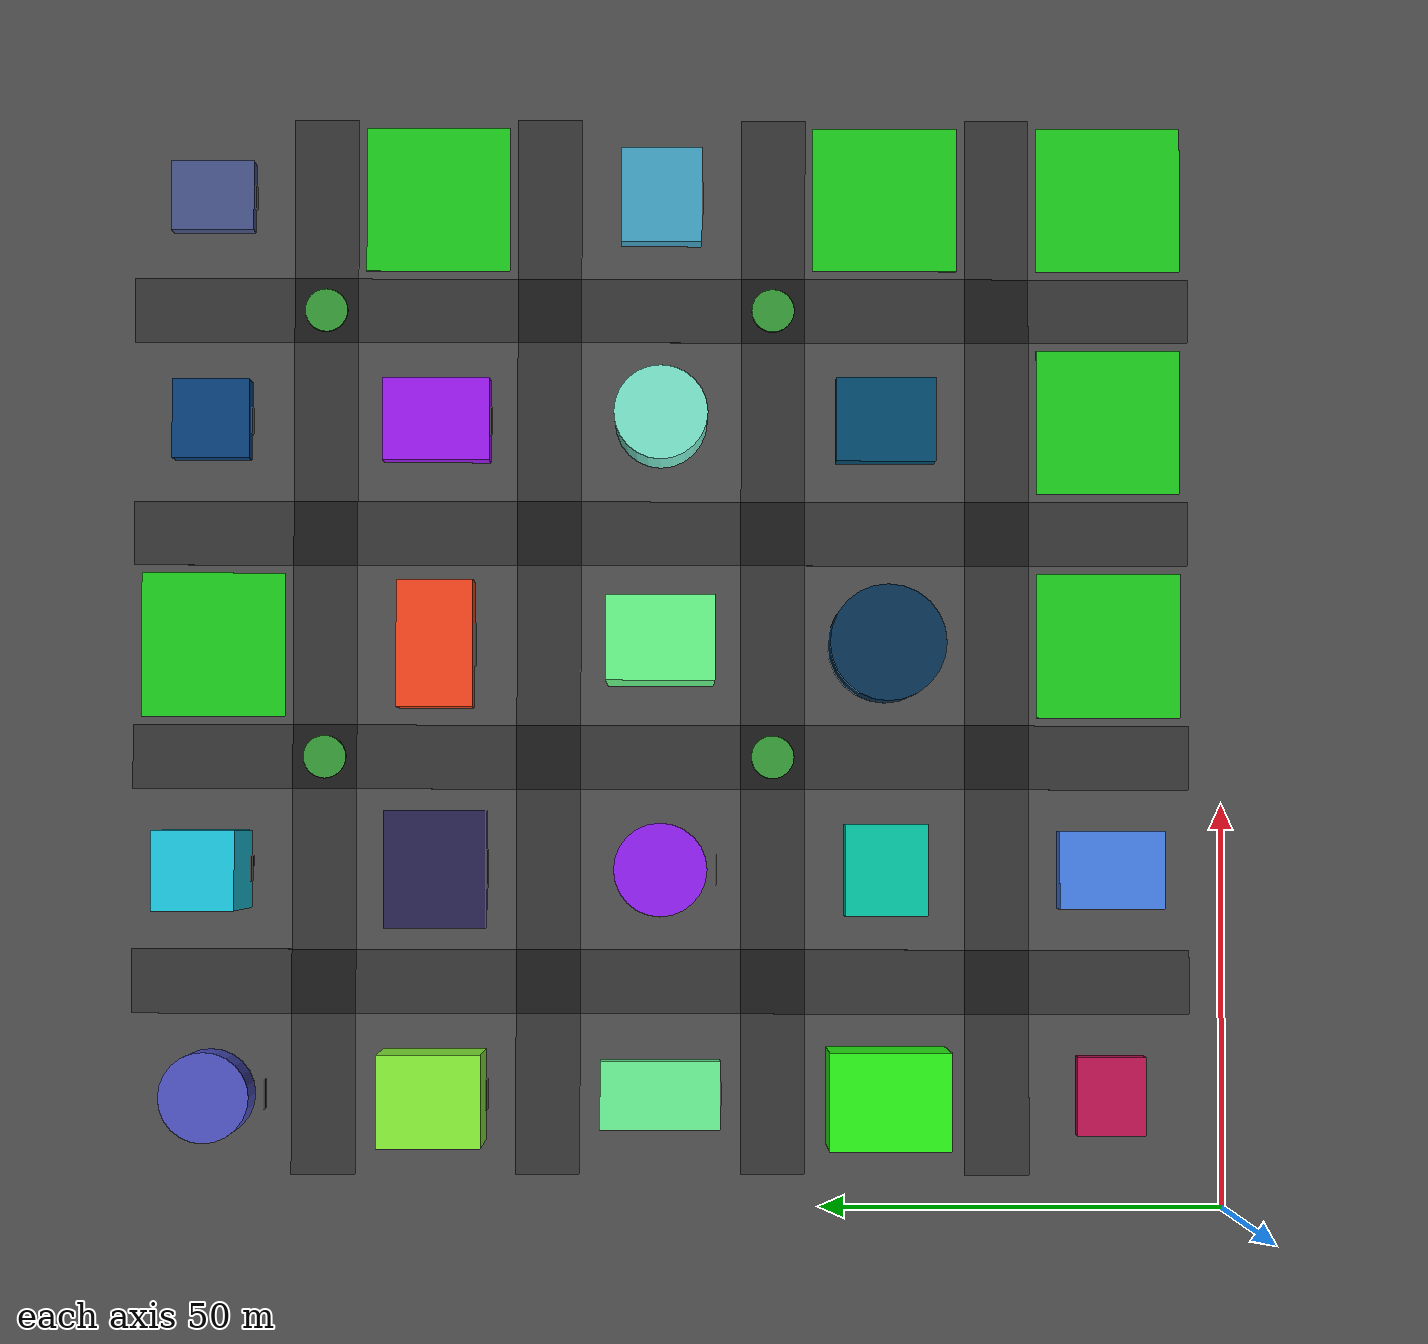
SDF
<sdf version="1.8">
 <world name="urban_city_rich">
  <model name="ground_plane">
   <static>true</static>
   <link name="link">
    <collision name="collision">
     <geometry><plane><normal>0 0 1</normal><size>200 200</size></plane></geometry>
     <surface><friction><ode><mu>100</mu><mu2>50</mu2></ode></friction></surface>
    </collision>
    <visual name="visual">
     <geometry><plane><normal>0 0 1</normal><size>200 200</size></plane></geometry>
     <material><ambient>0.3 0.3 0.3 1</ambient><diffuse>0.3 0.3 0.3 1</diffuse></material>
    </visual>
   </link>
  </model>
  <model name="bldg_30">
   <static>true</static>
   <pose>14.0 14.0 1.7848468009014558 0 0 0</pose>
   <link name="link">
    <collision name="col">
     <geometry><box><size>9.741607187313399 8.467866336058396 3.5696936018029115</size></box></geometry>
    </collision>
    <visual name="vis">
     <geometry><box><size>9.741607187313399 8.467866336058396 3.5696936018029115</size></box></geometry>
     <material>
      <ambient>0.7357371787890434 0.060957571476515815 0.31360480976972926 1</ambient>
      <diffuse>0.7357371787890434 0.060957571476515815 0.31360480976972926 1</diffuse>
     </material>
    </visual>
   </link>
  </model>
  <model name="road_h_0_1">
   <static>true</static>
   <pose>14.0 28.0 0.01 0 0 0</pose>
   <link name="link">
    <visual name="vis">
     <geometry><box><size>20.0 8.0 0.02</size></box></geometry>
     <material><ambient>0.2 0.2 0.2 1</ambient><diffuse>0.2 0.2 0.2 1</diffuse></material>
    </visual>
   </link>
  </model>
  <model name="bldg_31">
   <static>true</static>
   <pose>14.0 42.0 8.341775944589713 0 0 0</pose>
   <link name="link">
    <collision name="col">
     <geometry><box><size>12.022803063356108 14.821759136386284 16.683551889179427</size></box></geometry>
    </collision>
    <visual name="vis">
     <geometry><box><size>12.022803063356108 14.821759136386284 16.683551889179427</size></box></geometry>
     <material>
      <ambient>0.15743272793948326 0.9607789032744504 0.08011146524058688 1</ambient>
      <diffuse>0.15743272793948326 0.9607789032744504 0.08011146524058688 1</diffuse>
     </material>
    </visual>
   </link>
  </model>
  <model name="door_31">
   <static>true</static>
   <pose>14.0 34.48912043180686 1.0 0 0 0</pose>
   <link name="link">
    <visual name="vis">
     <geometry><box><size>4.0076010211187025 0.2 2.0</size></box></geometry>
     <material><ambient>0 0 0 1</ambient><diffuse>0 0 0 1</diffuse></material>
    </visual>
   </link>
  </model>
  <model name="road_h_0_2">
   <static>true</static>
   <pose>14.0 56.0 0.01 0 0 0</pose>
   <link name="link">
    <visual name="vis">
     <geometry><box><size>20.0 8.0 0.02</size></box></geometry>
     <material><ambient>0.2 0.2 0.2 1</ambient><diffuse>0.2 0.2 0.2 1</diffuse></material>
    </visual>
   </link>
  </model>
  <model name="bldg_32">
   <static>true</static>
   <pose>14.0 70.0 1.6027819990556886 0 0 0</pose>
   <link name="link">
    <collision name="col">
     <geometry><box><size>8.543686907006059 14.894553615761035 3.2055639981113773</size></box></geometry>
    </collision>
    <visual name="vis">
     <geometry><box><size>8.543686907006059 14.894553615761035 3.2055639981113773</size></box></geometry>
     <material>
      <ambient>0.40377555131827747 0.9415961272290894 0.5696754101381849 1</ambient>
      <diffuse>0.40377555131827747 0.9415961272290894 0.5696754101381849 1</diffuse>
     </material>
    </visual>
   </link>
  </model>
  <model name="door_32">
   <static>true</static>
   <pose>14.0 62.45272319211948 1.0 0 0 0</pose>
   <link name="link">
    <visual name="vis">
     <geometry><box><size>2.8478956356686864 0.2 2.0</size></box></geometry>
     <material><ambient>0 0 0 1</ambient><diffuse>0 0 0 1</diffuse></material>
    </visual>
   </link>
  </model>
  <model name="road_h_0_3">
   <static>true</static>
   <pose>14.0 84.0 0.01 0 0 0</pose>
   <link name="link">
    <visual name="vis">
     <geometry><box><size>20.0 8.0 0.02</size></box></geometry>
     <material><ambient>0.2 0.2 0.2 1</ambient><diffuse>0.2 0.2 0.2 1</diffuse></material>
    </visual>
   </link>
  </model>
  <model name="bldg_33">
   <static>true</static>
   <pose>14.0 98.0 8.69381510332103 0 0 0</pose>
   <link name="link">
    <collision name="col">
     <geometry><box><size>11.35379932268698 12.669378314329798 17.38763020664206</size></box></geometry>
    </collision>
    <visual name="vis">
     <geometry><box><size>11.35379932268698 12.669378314329798 17.38763020664206</size></box></geometry>
     <material>
      <ambient>0.5227827155319589 0.9347062577364272 0.20425919942353643 1</ambient>
      <diffuse>0.5227827155319589 0.9347062577364272 0.20425919942353643 1</diffuse>
     </material>
    </visual>
   </link>
  </model>
  <model name="door_33">
   <static>true</static>
   <pose>14.0 91.5653108428351 1.0 0 0 0</pose>
   <link name="link">
    <visual name="vis">
     <geometry><box><size>3.7845997742289934 0.2 2.0</size></box></geometry>
     <material><ambient>0 0 0 1</ambient><diffuse>0 0 0 1</diffuse></material>
    </visual>
   </link>
  </model>
  <model name="road_h_0_4">
   <static>true</static>
   <pose>14.0 112.0 0.01 0 0 0</pose>
   <link name="link">
    <visual name="vis">
     <geometry><box><size>20.0 8.0 0.02</size></box></geometry>
     <material><ambient>0.2 0.2 0.2 1</ambient><diffuse>0.2 0.2 0.2 1</diffuse></material>
    </visual>
   </link>
  </model>
  <model name="bldg_34">
   <static>true</static>
   <pose>14.0 126.0 4.88685952615846 0 0 0</pose>
   <link name="link">
    <collision name="col">
     <geometry><cylinder><radius>5.583143387165018</radius><length>9.77371905231692</length></cylinder></geometry>
    </collision>
    <visual name="vis">
     <geometry><cylinder><radius>5.583143387165018</radius><length>9.77371905231692</length></cylinder></geometry>
     <material>
      <ambient>0.2999970797987622 0.31617719627185403 0.7518644924144021 1</ambient>
      <diffuse>0.2999970797987622 0.31617719627185403 0.7518644924144021 1</diffuse>
     </material>
    </visual>
   </link>
  </model>
  <model name="door_34">
   <static>true</static>
   <pose>14.0 119.21323910816012 1.0 0 0 0</pose>
   <link name="link">
    <visual name="vis">
     <geometry><box><size>3.7220955914433453 0.2 2.0</size></box></geometry>
     <material><ambient>0 0 0 1</ambient><diffuse>0 0 0 1</diffuse></material>
    </visual>
   </link>
  </model>
  <model name="road_v_1_0">
   <static>true</static>
   <pose>28.0 14.0 0.01 0 0 0</pose>
   <link name="link">
    <visual name="vis">
     <geometry><box><size>8.0 20.0 0.02</size></box></geometry>
     <material><ambient>0.2 0.2 0.2 1</ambient><diffuse>0.2 0.2 0.2 1</diffuse></material>
    </visual>
   </link>
  </model>
  <model name="bldg_39">
   <static>true</static>
   <pose>42.0 14.0 2.576418280708197 0 0 0</pose>
   <link name="link">
    <collision name="col">
     <geometry><box><size>9.628778498619624 13.073903671080638 5.152836561416394</size></box></geometry>
    </collision>
    <visual name="vis">
     <geometry><box><size>9.628778498619624 13.073903671080638 5.152836561416394</size></box></geometry>
     <material>
      <ambient>0.2639839016304094 0.48853185214937656 0.9053364910793232 1</ambient>
      <diffuse>0.2639839016304094 0.48853185214937656 0.9053364910793232 1</diffuse>
     </material>
    </visual>
   </link>
  </model>
  <model name="road_inter_1_1">
   <static>true</static>
   <pose>28.0 28.0 0.01 0 0 0</pose>
   <link name="link">
    <visual name="vis">
     <geometry><box><size>8.0 8.0 0.02</size></box></geometry>
     <material><ambient>0.1 0.1 0.1 1</ambient><diffuse>0.1 0.1 0.1 1</diffuse></material>
    </visual>
   </link>
  </model>
  <model name="road_h_1_1">
   <static>true</static>
   <pose>42.0 28.0 0.01 0 0 0</pose>
   <link name="link">
    <visual name="vis">
     <geometry><box><size>20.0 8.0 0.02</size></box></geometry>
     <material><ambient>0.2 0.2 0.2 1</ambient><diffuse>0.2 0.2 0.2 1</diffuse></material>
    </visual>
   </link>
  </model>
  <model name="road_v_1_1">
   <static>true</static>
   <pose>28.0 42.0 0.01 0 0 0</pose>
   <link name="link">
    <visual name="vis">
     <geometry><box><size>8.0 20.0 0.02</size></box></geometry>
     <material><ambient>0.2 0.2 0.2 1</ambient><diffuse>0.2 0.2 0.2 1</diffuse></material>
    </visual>
   </link>
  </model>
  <model name="bldg_40">
   <static>true</static>
   <pose>42.0 42.0 3.4229846771273342 0 0 0</pose>
   <link name="link">
    <collision name="col">
     <geometry><box><size>11.38860618050981 10.213441791778013 6.8459693542546685</size></box></geometry>
    </collision>
    <visual name="vis">
     <geometry><box><size>11.38860618050981 10.213441791778013 6.8459693542546685</size></box></geometry>
     <material>
      <ambient>0.0035456890877823 0.7711192230196271 0.6371133773013796 1</ambient>
      <diffuse>0.0035456890877823 0.7711192230196271 0.6371133773013796 1</diffuse>
     </material>
    </visual>
   </link>
  </model>
  <model name="door_40">
   <static>true</static>
   <pose>42.0 36.793279104110994 1.0 0 0 0</pose>
   <link name="link">
    <visual name="vis">
     <geometry><box><size>3.796202060169937 0.2 2.0</size></box></geometry>
     <material><ambient>0 0 0 1</ambient><diffuse>0 0 0 1</diffuse></material>
    </visual>
   </link>
  </model>
  <model name="road_inter_1_2">
   <static>true</static>
   <pose>28.0 56.0 0.01 0 0 0</pose>
   <link name="link">
    <visual name="vis">
     <geometry><box><size>8.0 8.0 0.02</size></box></geometry>
     <material><ambient>0.1 0.1 0.1 1</ambient><diffuse>0.1 0.1 0.1 1</diffuse></material>
    </visual>
   </link>
  </model>
  <model name="road_h_1_2">
   <static>true</static>
   <pose>42.0 56.0 0.01 0 0 0</pose>
   <link name="link">
    <visual name="vis">
     <geometry><box><size>20.0 8.0 0.02</size></box></geometry>
     <material><ambient>0.2 0.2 0.2 1</ambient><diffuse>0.2 0.2 0.2 1</diffuse></material>
    </visual>
   </link>
  </model>
  <model name="road_v_1_2">
   <static>true</static>
   <pose>28.0 70.0 0.01 0 0 0</pose>
   <link name="link">
    <visual name="vis">
     <geometry><box><size>8.0 20.0 0.02</size></box></geometry>
     <material><ambient>0.2 0.2 0.2 1</ambient><diffuse>0.2 0.2 0.2 1</diffuse></material>
    </visual>
   </link>
  </model>
  <model name="bldg_41">
   <static>true</static>
   <pose>42.0 70.0 4.1158197627388615 0 0 0</pose>
   <link name="link">
    <collision name="col">
     <geometry><cylinder><radius>5.767342047443402</radius><length>8.231639525477723</length></cylinder></geometry>
    </collision>
    <visual name="vis">
     <geometry><cylinder><radius>5.767342047443402</radius><length>8.231639525477723</length></cylinder></geometry>
     <material>
      <ambient>0.5609068647747464 0.111873880589335 0.9450509390466391 1</ambient>
      <diffuse>0.5609068647747464 0.111873880589335 0.9450509390466391 1</diffuse>
     </material>
    </visual>
   </link>
  </model>
  <model name="door_41">
   <static>true</static>
   <pose>42.0 63.077330212960035 1.0 0 0 0</pose>
   <link name="link">
    <visual name="vis">
     <geometry><box><size>3.8448946982956014 0.2 2.0</size></box></geometry>
     <material><ambient>0 0 0 1</ambient><diffuse>0 0 0 1</diffuse></material>
    </visual>
   </link>
  </model>
  <model name="road_inter_1_3">
   <static>true</static>
   <pose>28.0 84.0 0.01 0 0 0</pose>
   <link name="link">
    <visual name="vis">
     <geometry><box><size>8.0 8.0 0.02</size></box></geometry>
     <material><ambient>0.1 0.1 0.1 1</ambient><diffuse>0.1 0.1 0.1 1</diffuse></material>
    </visual>
   </link>
  </model>
  <model name="road_h_1_3">
   <static>true</static>
   <pose>42.0 84.0 0.01 0 0 0</pose>
   <link name="link">
    <visual name="vis">
     <geometry><box><size>20.0 8.0 0.02</size></box></geometry>
     <material><ambient>0.2 0.2 0.2 1</ambient><diffuse>0.2 0.2 0.2 1</diffuse></material>
    </visual>
   </link>
  </model>
  <model name="road_v_1_3">
   <static>true</static>
   <pose>28.0 98.0 0.01 0 0 0</pose>
   <link name="link">
    <visual name="vis">
     <geometry><box><size>8.0 20.0 0.02</size></box></geometry>
     <material><ambient>0.2 0.2 0.2 1</ambient><diffuse>0.2 0.2 0.2 1</diffuse></material>
    </visual>
   </link>
  </model>
  <model name="bldg_42">
   <static>true</static>
   <pose>42.0 98.0 2.3183854338082837 0 0 0</pose>
   <link name="link">
    <collision name="col">
     <geometry><box><size>14.676760159088133 12.660076531918353 4.636770867616567</size></box></geometry>
    </collision>
    <visual name="vis">
     <geometry><box><size>14.676760159088133 12.660076531918353 4.636770867616567</size></box></geometry>
     <material>
      <ambient>0.14809378556748265 0.12744551928213876 0.3082583499301337 1</ambient>
      <diffuse>0.14809378556748265 0.12744551928213876 0.3082583499301337 1</diffuse>
     </material>
    </visual>
   </link>
  </model>
  <model name="door_42">
   <static>true</static>
   <pose>42.0 91.56996173404083 1.0 0 0 0</pose>
   <link name="link">
    <visual name="vis">
     <geometry><box><size>4.892253386362711 0.2 2.0</size></box></geometry>
     <material><ambient>0 0 0 1</ambient><diffuse>0 0 0 1</diffuse></material>
    </visual>
   </link>
  </model>
  <model name="road_inter_1_4">
   <static>true</static>
   <pose>28.0 112.0 0.01 0 0 0</pose>
   <link name="link">
    <visual name="vis">
     <geometry><box><size>8.0 8.0 0.02</size></box></geometry>
     <material><ambient>0.1 0.1 0.1 1</ambient><diffuse>0.1 0.1 0.1 1</diffuse></material>
    </visual>
   </link>
  </model>
  <model name="road_h_1_4">
   <static>true</static>
   <pose>42.0 112.0 0.01 0 0 0</pose>
   <link name="link">
    <visual name="vis">
     <geometry><box><size>20.0 8.0 0.02</size></box></geometry>
     <material><ambient>0.2 0.2 0.2 1</ambient><diffuse>0.2 0.2 0.2 1</diffuse></material>
    </visual>
   </link>
  </model>
  <model name="road_v_1_4">
   <static>true</static>
   <pose>28.0 126.0 0.01 0 0 0</pose>
   <link name="link">
    <visual name="vis">
     <geometry><box><size>8.0 20.0 0.02</size></box></geometry>
     <material><ambient>0.2 0.2 0.2 1</ambient><diffuse>0.2 0.2 0.2 1</diffuse></material>
    </visual>
   </link>
  </model>
  <model name="bldg_43">
   <static>true</static>
   <pose>42.0 126.0 11.489246365264746 0 0 0</pose>
   <link name="link">
    <collision name="col">
     <geometry><box><size>9.680612306718032 9.996237913783396 22.978492730529492</size></box></geometry>
    </collision>
    <visual name="vis">
     <geometry><box><size>9.680612306718032 9.996237913783396 22.978492730529492</size></box></geometry>
     <material>
      <ambient>0.10279362167178563 0.7801162418714427 0.8841347014510089 1</ambient>
      <diffuse>0.10279362167178563 0.7801162418714427 0.8841347014510089 1</diffuse>
     </material>
    </visual>
   </link>
  </model>
  <model name="door_43">
   <static>true</static>
   <pose>42.0 120.9018810431083 1.0 0 0 0</pose>
   <link name="link">
    <visual name="vis">
     <geometry><box><size>3.2268707689060108 0.2 2.0</size></box></geometry>
     <material><ambient>0 0 0 1</ambient><diffuse>0 0 0 1</diffuse></material>
    </visual>
   </link>
  </model>
  <model name="road_v_2_0">
   <static>true</static>
   <pose>56.0 14.0 0.01 0 0 0</pose>
   <link name="link">
    <visual name="vis">
     <geometry><box><size>8.0 20.0 0.02</size></box></geometry>
     <material><ambient>0.2 0.2 0.2 1</ambient><diffuse>0.2 0.2 0.2 1</diffuse></material>
    </visual>
   </link>
  </model>
  <model name="park_2_0">
   <static>true</static>
   <pose>70.0 14.0 0.05 0 0 0</pose>
   <link name="link">
    <visual name="vis">
     <geometry><box><size>18.0 18.0 0.1</size></box></geometry>
     <material><ambient>0.1 0.8 0.1 1</ambient><diffuse>0.1 0.8 0.1 1</diffuse></material>
    </visual>
   </link>
  </model>
  <model name="road_inter_2_1">
   <static>true</static>
   <pose>56.0 28.0 0.01 0 0 0</pose>
   <link name="link">
    <visual name="vis">
     <geometry><box><size>8.0 8.0 0.02</size></box></geometry>
     <material><ambient>0.1 0.1 0.1 1</ambient><diffuse>0.1 0.1 0.1 1</diffuse></material>
    </visual>
   </link>
  </model>
  <model name="road_h_2_1">
   <static>true</static>
   <pose>70.0 28.0 0.01 0 0 0</pose>
   <link name="link">
    <visual name="vis">
     <geometry><box><size>20.0 8.0 0.02</size></box></geometry>
     <material><ambient>0.2 0.2 0.2 1</ambient><diffuse>0.2 0.2 0.2 1</diffuse></material>
    </visual>
   </link>
  </model>
  <model name="road_v_2_1">
   <static>true</static>
   <pose>56.0 42.0 0.01 0 0 0</pose>
   <link name="link">
    <visual name="vis">
     <geometry><box><size>8.0 20.0 0.02</size></box></geometry>
     <material><ambient>0.2 0.2 0.2 1</ambient><diffuse>0.2 0.2 0.2 1</diffuse></material>
    </visual>
   </link>
  </model>
  <model name="bldg_47">
   <static>true</static>
   <pose>70.0 42.0 5.551908673386006 0 0 0</pose>
   <link name="link">
    <collision name="col">
     <geometry>
      <cylinder><radius>7.181381996611448</radius><length>11.103817346772011</length></cylinder>
     </geometry>
    </collision>
    <visual name="vis">
     <geometry>
      <cylinder><radius>7.181381996611448</radius><length>11.103817346772011</length></cylinder>
     </geometry>
     <material>
      <ambient>0.02366443470145152 0.19312978832770866 0.3282619511977065 1</ambient>
      <diffuse>0.02366443470145152 0.19312978832770866 0.3282619511977065 1</diffuse>
     </material>
    </visual>
   </link>
  </model>
  <model name="door_47">
   <static>true</static>
   <pose>70.0 36.98961805036892 1.0 0 0 0</pose>
   <link name="link">
    <visual name="vis">
     <geometry><box><size>4.787587997740965 0.2 2.0</size></box></geometry>
     <material><ambient>0 0 0 1</ambient><diffuse>0 0 0 1</diffuse></material>
    </visual>
   </link>
  </model>
  <model name="road_inter_2_2">
   <static>true</static>
   <pose>56.0 56.0 0.01 0 0 0</pose>
   <link name="link">
    <visual name="vis">
     <geometry><box><size>8.0 8.0 0.02</size></box></geometry>
     <material><ambient>0.1 0.1 0.1 1</ambient><diffuse>0.1 0.1 0.1 1</diffuse></material>
    </visual>
   </link>
  </model>
  <model name="roundabout_2_2">
   <static>true</static>
   <pose>56.0 56.0 0.3 0 0 0</pose>
   <link name="link">
    <collision name="col">
     <geometry><cylinder><radius>2.6666666666666665</radius><length>0.6</length></cylinder></geometry>
    </collision>
    <visual name="vis">
     <geometry><cylinder><radius>2.6666666666666665</radius><length>0.6</length></cylinder></geometry>
     <material><ambient>0.2 0.6 0.2 1</ambient><diffuse>0.2 0.6 0.2 1</diffuse></material>
    </visual>
   </link>
  </model>
  <model name="road_h_2_2">
   <static>true</static>
   <pose>70.0 56.0 0.01 0 0 0</pose>
   <link name="link">
    <visual name="vis">
     <geometry><box><size>20.0 8.0 0.02</size></box></geometry>
     <material><ambient>0.2 0.2 0.2 1</ambient><diffuse>0.2 0.2 0.2 1</diffuse></material>
    </visual>
   </link>
  </model>
  <model name="road_v_2_2">
   <static>true</static>
   <pose>56.0 70.0 0.01 0 0 0</pose>
   <link name="link">
    <visual name="vis">
     <geometry><box><size>8.0 20.0 0.02</size></box></geometry>
     <material><ambient>0.2 0.2 0.2 1</ambient><diffuse>0.2 0.2 0.2 1</diffuse></material>
    </visual>
   </link>
  </model>
  <model name="bldg_48">
   <static>true</static>
   <pose>70.0 70.0 12.168891040483611 0 0 0</pose>
   <link name="link">
    <collision name="col">
     <geometry><box><size>10.23299994177497 13.131853908861022 24.337782080967223</size></box></geometry>
    </collision>
    <visual name="vis">
     <geometry><box><size>10.23299994177497 13.131853908861022 24.337782080967223</size></box></geometry>
     <material>
      <ambient>0.39967838436006087 0.9811496871982601 0.5362157324787219 1</ambient>
      <diffuse>0.39967838436006087 0.9811496871982601 0.5362157324787219 1</diffuse>
     </material>
    </visual>
   </link>
  </model>
  <model name="door_48">
   <static>true</static>
   <pose>70.0 63.33407304556949 1.0 0 0 0</pose>
   <link name="link">
    <visual name="vis">
     <geometry><box><size>3.4109999805916567 0.2 2.0</size></box></geometry>
     <material><ambient>0 0 0 1</ambient><diffuse>0 0 0 1</diffuse></material>
    </visual>
   </link>
  </model>
  <model name="road_inter_2_3">
   <static>true</static>
   <pose>56.0 84.0 0.01 0 0 0</pose>
   <link name="link">
    <visual name="vis">
     <geometry><box><size>8.0 8.0 0.02</size></box></geometry>
     <material><ambient>0.1 0.1 0.1 1</ambient><diffuse>0.1 0.1 0.1 1</diffuse></material>
    </visual>
   </link>
  </model>
  <model name="road_h_2_3">
   <static>true</static>
   <pose>70.0 84.0 0.01 0 0 0</pose>
   <link name="link">
    <visual name="vis">
     <geometry><box><size>20.0 8.0 0.02</size></box></geometry>
     <material><ambient>0.2 0.2 0.2 1</ambient><diffuse>0.2 0.2 0.2 1</diffuse></material>
    </visual>
   </link>
  </model>
  <model name="road_v_2_3">
   <static>true</static>
   <pose>56.0 98.0 0.01 0 0 0</pose>
   <link name="link">
    <visual name="vis">
     <geometry><box><size>8.0 20.0 0.02</size></box></geometry>
     <material><ambient>0.2 0.2 0.2 1</ambient><diffuse>0.2 0.2 0.2 1</diffuse></material>
    </visual>
   </link>
  </model>
  <model name="bldg_49">
   <static>true</static>
   <pose>70.0 98.0 3.653417518514276 0 0 0</pose>
   <link name="link">
    <collision name="col">
     <geometry><box><size>15.763204888177825 9.428542529379708 7.306835037028552</size></box></geometry>
    </collision>
    <visual name="vis">
     <geometry><box><size>15.763204888177825 9.428542529379708 7.306835037028552</size></box></geometry>
     <material>
      <ambient>0.9625343157615555 0.2654663625229686 0.1084025472147111 1</ambient>
      <diffuse>0.9625343157615555 0.2654663625229686 0.1084025472147111 1</diffuse>
     </material>
    </visual>
   </link>
  </model>
  <model name="door_49">
   <static>true</static>
   <pose>70.0 93.18572873531015 1.0 0 0 0</pose>
   <link name="link">
    <visual name="vis">
     <geometry><box><size>5.254401629392608 0.2 2.0</size></box></geometry>
     <material><ambient>0 0 0 1</ambient><diffuse>0 0 0 1</diffuse></material>
    </visual>
   </link>
  </model>
  <model name="road_inter_2_4">
   <static>true</static>
   <pose>56.0 112.0 0.01 0 0 0</pose>
   <link name="link">
    <visual name="vis">
     <geometry><box><size>8.0 8.0 0.02</size></box></geometry>
     <material><ambient>0.1 0.1 0.1 1</ambient><diffuse>0.1 0.1 0.1 1</diffuse></material>
    </visual>
   </link>
  </model>
  <model name="roundabout_2_4">
   <static>true</static>
   <pose>56.0 112.0 0.3 0 0 0</pose>
   <link name="link">
    <collision name="col">
     <geometry><cylinder><radius>2.6666666666666665</radius><length>0.6</length></cylinder></geometry>
    </collision>
    <visual name="vis">
     <geometry><cylinder><radius>2.6666666666666665</radius><length>0.6</length></cylinder></geometry>
     <material><ambient>0.2 0.6 0.2 1</ambient><diffuse>0.2 0.6 0.2 1</diffuse></material>
    </visual>
   </link>
  </model>
  <model name="road_h_2_4">
   <static>true</static>
   <pose>70.0 112.0 0.01 0 0 0</pose>
   <link name="link">
    <visual name="vis">
     <geometry><box><size>20.0 8.0 0.02</size></box></geometry>
     <material><ambient>0.2 0.2 0.2 1</ambient><diffuse>0.2 0.2 0.2 1</diffuse></material>
    </visual>
   </link>
  </model>
  <model name="road_v_2_4">
   <static>true</static>
   <pose>56.0 126.0 0.01 0 0 0</pose>
   <link name="link">
    <visual name="vis">
     <geometry><box><size>8.0 20.0 0.02</size></box></geometry>
     <material><ambient>0.2 0.2 0.2 1</ambient><diffuse>0.2 0.2 0.2 1</diffuse></material>
    </visual>
   </link>
  </model>
  <model name="park_2_4">
   <static>true</static>
   <pose>70.0 126.0 0.05 0 0 0</pose>
   <link name="link">
    <visual name="vis">
     <geometry><box><size>18.0 18.0 0.1</size></box></geometry>
     <material><ambient>0.1 0.8 0.1 1</ambient><diffuse>0.1 0.8 0.1 1</diffuse></material>
    </visual>
   </link>
  </model>
  <model name="road_v_3_0">
   <static>true</static>
   <pose>84.0 14.0 0.01 0 0 0</pose>
   <link name="link">
    <visual name="vis">
     <geometry><box><size>8.0 20.0 0.02</size></box></geometry>
     <material><ambient>0.2 0.2 0.2 1</ambient><diffuse>0.2 0.2 0.2 1</diffuse></material>
    </visual>
   </link>
  </model>
  <model name="park_3_0">
   <static>true</static>
   <pose>98.0 14.0 0.05 0 0 0</pose>
   <link name="link">
    <visual name="vis">
     <geometry><box><size>18.0 18.0 0.1</size></box></geometry>
     <material><ambient>0.1 0.8 0.1 1</ambient><diffuse>0.1 0.8 0.1 1</diffuse></material>
    </visual>
   </link>
  </model>
  <model name="road_inter_3_1">
   <static>true</static>
   <pose>84.0 28.0 0.01 0 0 0</pose>
   <link name="link">
    <visual name="vis">
     <geometry><box><size>8.0 8.0 0.02</size></box></geometry>
     <material><ambient>0.1 0.1 0.1 1</ambient><diffuse>0.1 0.1 0.1 1</diffuse></material>
    </visual>
   </link>
  </model>
  <model name="road_h_3_1">
   <static>true</static>
   <pose>98.0 28.0 0.01 0 0 0</pose>
   <link name="link">
    <visual name="vis">
     <geometry><box><size>20.0 8.0 0.02</size></box></geometry>
     <material><ambient>0.2 0.2 0.2 1</ambient><diffuse>0.2 0.2 0.2 1</diffuse></material>
    </visual>
   </link>
  </model>
  <model name="road_v_3_1">
   <static>true</static>
   <pose>84.0 42.0 0.01 0 0 0</pose>
   <link name="link">
    <visual name="vis">
     <geometry><box><size>8.0 20.0 0.02</size></box></geometry>
     <material><ambient>0.2 0.2 0.2 1</ambient><diffuse>0.2 0.2 0.2 1</diffuse></material>
    </visual>
   </link>
  </model>
  <model name="bldg_54">
   <static>true</static>
   <pose>98.0 42.0 2.4232723739270705 0 0 0</pose>
   <link name="link">
    <collision name="col">
     <geometry><box><size>10.407598996524523 12.383497705085585 4.846544747854141</size></box></geometry>
    </collision>
    <visual name="vis">
     <geometry><box><size>10.407598996524523 12.383497705085585 4.846544747854141</size></box></geometry>
     <material>
      <ambient>0.0004059396972875273 0.2869137168689272 0.4298881499898346 1</ambient>
      <diffuse>0.0004059396972875273 0.2869137168689272 0.4298881499898346 1</diffuse>
     </material>
    </visual>
   </link>
  </model>
  <model name="door_54">
   <static>true</static>
   <pose>98.0 35.708251147457204 1.0 0 0 0</pose>
   <link name="link">
    <visual name="vis">
     <geometry><box><size>3.4691996655081745 0.2 2.0</size></box></geometry>
     <material><ambient>0 0 0 1</ambient><diffuse>0 0 0 1</diffuse></material>
    </visual>
   </link>
  </model>
  <model name="road_inter_3_2">
   <static>true</static>
   <pose>84.0 56.0 0.01 0 0 0</pose>
   <link name="link">
    <visual name="vis">
     <geometry><box><size>8.0 8.0 0.02</size></box></geometry>
     <material><ambient>0.1 0.1 0.1 1</ambient><diffuse>0.1 0.1 0.1 1</diffuse></material>
    </visual>
   </link>
  </model>
  <model name="road_h_3_2">
   <static>true</static>
   <pose>98.0 56.0 0.01 0 0 0</pose>
   <link name="link">
    <visual name="vis">
     <geometry><box><size>20.0 8.0 0.02</size></box></geometry>
     <material><ambient>0.2 0.2 0.2 1</ambient><diffuse>0.2 0.2 0.2 1</diffuse></material>
    </visual>
   </link>
  </model>
  <model name="road_v_3_2">
   <static>true</static>
   <pose>84.0 70.0 0.01 0 0 0</pose>
   <link name="link">
    <visual name="vis">
     <geometry><box><size>8.0 20.0 0.02</size></box></geometry>
     <material><ambient>0.2 0.2 0.2 1</ambient><diffuse>0.2 0.2 0.2 1</diffuse></material>
    </visual>
   </link>
  </model>
  <model name="bldg_55">
   <static>true</static>
   <pose>98.0 70.0 7.149881902470142 0 0 0</pose>
   <link name="link">
    <collision name="col">
     <geometry><cylinder><radius>5.76863919721923</radius><length>14.299763804940284</length></cylinder></geometry>
    </collision>
    <visual name="vis">
     <geometry><cylinder><radius>5.76863919721923</radius><length>14.299763804940284</length></cylinder></geometry>
     <material>
      <ambient>0.47318618590932626 0.9011808258282542 0.7960247601267803 1</ambient>
      <diffuse>0.47318618590932626 0.9011808258282542 0.7960247601267803 1</diffuse>
     </material>
    </visual>
   </link>
  </model>
  <model name="door_55">
   <static>true</static>
   <pose>98.0 65.0451943960436 1.0 0 0 0</pose>
   <link name="link">
    <visual name="vis">
     <geometry><box><size>3.84575946481282 0.2 2.0</size></box></geometry>
     <material><ambient>0 0 0 1</ambient><diffuse>0 0 0 1</diffuse></material>
    </visual>
   </link>
  </model>
  <model name="road_inter_3_3">
   <static>true</static>
   <pose>84.0 84.0 0.01 0 0 0</pose>
   <link name="link">
    <visual name="vis">
     <geometry><box><size>8.0 8.0 0.02</size></box></geometry>
     <material><ambient>0.1 0.1 0.1 1</ambient><diffuse>0.1 0.1 0.1 1</diffuse></material>
    </visual>
   </link>
  </model>
  <model name="road_h_3_3">
   <static>true</static>
   <pose>98.0 84.0 0.01 0 0 0</pose>
   <link name="link">
    <visual name="vis">
     <geometry><box><size>20.0 8.0 0.02</size></box></geometry>
     <material><ambient>0.2 0.2 0.2 1</ambient><diffuse>0.2 0.2 0.2 1</diffuse></material>
    </visual>
   </link>
  </model>
  <model name="road_v_3_3">
   <static>true</static>
   <pose>84.0 98.0 0.01 0 0 0</pose>
   <link name="link">
    <visual name="vis">
     <geometry><box><size>8.0 20.0 0.02</size></box></geometry>
     <material><ambient>0.2 0.2 0.2 1</ambient><diffuse>0.2 0.2 0.2 1</diffuse></material>
    </visual>
   </link>
  </model>
  <model name="bldg_56">
   <static>true</static>
   <pose>98.0 98.0 2.488276117497633 0 0 0</pose>
   <link name="link">
    <collision name="col">
     <geometry><box><size>10.27029123994422 13.310830690439989 4.976552234995266</size></box></geometry>
    </collision>
    <visual name="vis">
     <geometry><box><size>10.27029123994422 13.310830690439989 4.976552234995266</size></box></geometry>
     <material>
      <ambient>0.6192608053623755 0.09338720007556267 0.9519996624524752 1</ambient>
      <diffuse>0.6192608053623755 0.09338720007556267 0.9519996624524752 1</diffuse>
     </material>
    </visual>
   </link>
  </model>
  <model name="door_56">
   <static>true</static>
   <pose>98.0 91.24458465478001 1.0 0 0 0</pose>
   <link name="link">
    <visual name="vis">
     <geometry><box><size>3.42343041331474 0.2 2.0</size></box></geometry>
     <material><ambient>0 0 0 1</ambient><diffuse>0 0 0 1</diffuse></material>
    </visual>
   </link>
  </model>
  <model name="road_inter_3_4">
   <static>true</static>
   <pose>84.0 112.0 0.01 0 0 0</pose>
   <link name="link">
    <visual name="vis">
     <geometry><box><size>8.0 8.0 0.02</size></box></geometry>
     <material><ambient>0.1 0.1 0.1 1</ambient><diffuse>0.1 0.1 0.1 1</diffuse></material>
    </visual>
   </link>
  </model>
  <model name="road_h_3_4">
   <static>true</static>
   <pose>98.0 112.0 0.01 0 0 0</pose>
   <link name="link">
    <visual name="vis">
     <geometry><box><size>20.0 8.0 0.02</size></box></geometry>
     <material><ambient>0.2 0.2 0.2 1</ambient><diffuse>0.2 0.2 0.2 1</diffuse></material>
    </visual>
   </link>
  </model>
  <model name="road_v_3_4">
   <static>true</static>
   <pose>84.0 126.0 0.01 0 0 0</pose>
   <link name="link">
    <visual name="vis">
     <geometry><box><size>8.0 20.0 0.02</size></box></geometry>
     <material><ambient>0.2 0.2 0.2 1</ambient><diffuse>0.2 0.2 0.2 1</diffuse></material>
    </visual>
   </link>
  </model>
  <model name="bldg_57">
   <static>true</static>
   <pose>98.0 126.0 2.509193505835751 0 0 0</pose>
   <link name="link">
    <collision name="col">
     <geometry><box><size>9.797125327978307 9.593039461812612 5.018387011671502</size></box></geometry>
    </collision>
    <visual name="vis">
     <geometry><box><size>9.797125327978307 9.593039461812612 5.018387011671502</size></box></geometry>
     <material>
      <ambient>0.024425387726826342 0.24484254407835015 0.47513634421880513 1</ambient>
      <diffuse>0.024425387726826342 0.24484254407835015 0.47513634421880513 1</diffuse>
     </material>
    </visual>
   </link>
  </model>
  <model name="door_57">
   <static>true</static>
   <pose>98.0 121.1034802690937 1.0 0 0 0</pose>
   <link name="link">
    <visual name="vis">
     <geometry><box><size>3.265708442659436 0.2 2.0</size></box></geometry>
     <material><ambient>0 0 0 1</ambient><diffuse>0 0 0 1</diffuse></material>
    </visual>
   </link>
  </model>
  <model name="road_v_4_0">
   <static>true</static>
   <pose>112.0 14.0 0.01 0 0 0</pose>
   <link name="link">
    <visual name="vis">
     <geometry><box><size>8.0 20.0 0.02</size></box></geometry>
     <material><ambient>0.2 0.2 0.2 1</ambient><diffuse>0.2 0.2 0.2 1</diffuse></material>
    </visual>
   </link>
  </model>
  <model name="park_4_0">
   <static>true</static>
   <pose>126.0 14.0 0.05 0 0 0</pose>
   <link name="link">
    <visual name="vis">
     <geometry><box><size>18.0 18.0 0.1</size></box></geometry>
     <material><ambient>0.1 0.8 0.1 1</ambient><diffuse>0.1 0.8 0.1 1</diffuse></material>
    </visual>
   </link>
  </model>
  <model name="road_inter_4_1">
   <static>true</static>
   <pose>112.0 28.0 0.01 0 0 0</pose>
   <link name="link">
    <visual name="vis">
     <geometry><box><size>8.0 8.0 0.02</size></box></geometry>
     <material><ambient>0.1 0.1 0.1 1</ambient><diffuse>0.1 0.1 0.1 1</diffuse></material>
    </visual>
   </link>
  </model>
  <model name="road_h_4_1">
   <static>true</static>
   <pose>126.0 28.0 0.01 0 0 0</pose>
   <link name="link">
    <visual name="vis">
     <geometry><box><size>20.0 8.0 0.02</size></box></geometry>
     <material><ambient>0.2 0.2 0.2 1</ambient><diffuse>0.2 0.2 0.2 1</diffuse></material>
    </visual>
   </link>
  </model>
  <model name="road_v_4_1">
   <static>true</static>
   <pose>112.0 42.0 0.01 0 0 0</pose>
   <link name="link">
    <visual name="vis">
     <geometry><box><size>8.0 20.0 0.02</size></box></geometry>
     <material><ambient>0.2 0.2 0.2 1</ambient><diffuse>0.2 0.2 0.2 1</diffuse></material>
    </visual>
   </link>
  </model>
  <model name="park_4_1">
   <static>true</static>
   <pose>126.0 42.0 0.05 0 0 0</pose>
   <link name="link">
    <visual name="vis">
     <geometry><box><size>18.0 18.0 0.1</size></box></geometry>
     <material><ambient>0.1 0.8 0.1 1</ambient><diffuse>0.1 0.8 0.1 1</diffuse></material>
    </visual>
   </link>
  </model>
  <model name="road_inter_4_2">
   <static>true</static>
   <pose>112.0 56.0 0.01 0 0 0</pose>
   <link name="link">
    <visual name="vis">
     <geometry><box><size>8.0 8.0 0.02</size></box></geometry>
     <material><ambient>0.1 0.1 0.1 1</ambient><diffuse>0.1 0.1 0.1 1</diffuse></material>
    </visual>
   </link>
  </model>
  <model name="roundabout_4_2">
   <static>true</static>
   <pose>112.0 56.0 0.3 0 0 0</pose>
   <link name="link">
    <collision name="col">
     <geometry><cylinder><radius>2.6666666666666665</radius><length>0.6</length></cylinder></geometry>
    </collision>
    <visual name="vis">
     <geometry><cylinder><radius>2.6666666666666665</radius><length>0.6</length></cylinder></geometry>
     <material><ambient>0.2 0.6 0.2 1</ambient><diffuse>0.2 0.6 0.2 1</diffuse></material>
    </visual>
   </link>
  </model>
  <model name="road_h_4_2">
   <static>true</static>
   <pose>126.0 56.0 0.01 0 0 0</pose>
   <link name="link">
    <visual name="vis">
     <geometry><box><size>20.0 8.0 0.02</size></box></geometry>
     <material><ambient>0.2 0.2 0.2 1</ambient><diffuse>0.2 0.2 0.2 1</diffuse></material>
    </visual>
   </link>
  </model>
  <model name="road_v_4_2">
   <static>true</static>
   <pose>112.0 70.0 0.01 0 0 0</pose>
   <link name="link">
    <visual name="vis">
     <geometry><box><size>8.0 20.0 0.02</size></box></geometry>
     <material><ambient>0.2 0.2 0.2 1</ambient><diffuse>0.2 0.2 0.2 1</diffuse></material>
    </visual>
   </link>
  </model>
  <model name="bldg_62">
   <static>true</static>
   <pose>126.0 70.0 2.6154831632393774 0 0 0</pose>
   <link name="link">
    <collision name="col">
     <geometry><box><size>11.797395494584427 10.073532387720155 5.230966326478755</size></box></geometry>
    </collision>
    <visual name="vis">
     <geometry><box><size>11.797395494584427 10.073532387720155 5.230966326478755</size></box></geometry>
     <material>
      <ambient>0.24723973750965955 0.6376614367761563 0.7658136842971655 1</ambient>
      <diffuse>0.24723973750965955 0.6376614367761563 0.7658136842971655 1</diffuse>
     </material>
    </visual>
   </link>
  </model>
  <model name="door_62">
   <static>true</static>
   <pose>126.0 64.86323380613993 1.0 0 0 0</pose>
   <link name="link">
    <visual name="vis">
     <geometry><box><size>3.9324651648614757 0.2 2.0</size></box></geometry>
     <material><ambient>0 0 0 1</ambient><diffuse>0 0 0 1</diffuse></material>
    </visual>
   </link>
  </model>
  <model name="road_inter_4_3">
   <static>true</static>
   <pose>112.0 84.0 0.01 0 0 0</pose>
   <link name="link">
    <visual name="vis">
     <geometry><box><size>8.0 8.0 0.02</size></box></geometry>
     <material><ambient>0.1 0.1 0.1 1</ambient><diffuse>0.1 0.1 0.1 1</diffuse></material>
    </visual>
   </link>
  </model>
  <model name="road_h_4_3">
   <static>true</static>
   <pose>126.0 84.0 0.01 0 0 0</pose>
   <link name="link">
    <visual name="vis">
     <geometry><box><size>20.0 8.0 0.02</size></box></geometry>
     <material><ambient>0.2 0.2 0.2 1</ambient><diffuse>0.2 0.2 0.2 1</diffuse></material>
    </visual>
   </link>
  </model>
  <model name="road_v_4_3">
   <static>true</static>
   <pose>112.0 98.0 0.01 0 0 0</pose>
   <link name="link">
    <visual name="vis">
     <geometry><box><size>8.0 20.0 0.02</size></box></geometry>
     <material><ambient>0.2 0.2 0.2 1</ambient><diffuse>0.2 0.2 0.2 1</diffuse></material>
    </visual>
   </link>
  </model>
  <model name="park_4_3">
   <static>true</static>
   <pose>126.0 98.0 0.05 0 0 0</pose>
   <link name="link">
    <visual name="vis">
     <geometry><box><size>18.0 18.0 0.1</size></box></geometry>
     <material><ambient>0.1 0.8 0.1 1</ambient><diffuse>0.1 0.8 0.1 1</diffuse></material>
    </visual>
   </link>
  </model>
  <model name="road_inter_4_4">
   <static>true</static>
   <pose>112.0 112.0 0.01 0 0 0</pose>
   <link name="link">
    <visual name="vis">
     <geometry><box><size>8.0 8.0 0.02</size></box></geometry>
     <material><ambient>0.1 0.1 0.1 1</ambient><diffuse>0.1 0.1 0.1 1</diffuse></material>
    </visual>
   </link>
  </model>
  <model name="roundabout_4_4">
   <static>true</static>
   <pose>112.0 112.0 0.3 0 0 0</pose>
   <link name="link">
    <collision name="col">
     <geometry><cylinder><radius>2.6666666666666665</radius><length>0.6</length></cylinder></geometry>
    </collision>
    <visual name="vis">
     <geometry><cylinder><radius>2.6666666666666665</radius><length>0.6</length></cylinder></geometry>
     <material><ambient>0.2 0.6 0.2 1</ambient><diffuse>0.2 0.6 0.2 1</diffuse></material>
    </visual>
   </link>
  </model>
  <model name="road_h_4_4">
   <static>true</static>
   <pose>126.0 112.0 0.01 0 0 0</pose>
   <link name="link">
    <visual name="vis">
     <geometry><box><size>20.0 8.0 0.02</size></box></geometry>
     <material><ambient>0.2 0.2 0.2 1</ambient><diffuse>0.2 0.2 0.2 1</diffuse></material>
    </visual>
   </link>
  </model>
  <model name="road_v_4_4">
   <static>true</static>
   <pose>112.0 126.0 0.01 0 0 0</pose>
   <link name="link">
    <visual name="vis">
     <geometry><box><size>8.0 20.0 0.02</size></box></geometry>
     <material><ambient>0.2 0.2 0.2 1</ambient><diffuse>0.2 0.2 0.2 1</diffuse></material>
    </visual>
   </link>
  </model>
  <model name="bldg_63">
   <static>true</static>
   <pose>126.0 126.0 1.9118961703763073 0 0 0</pose>
   <link name="link">
    <collision name="col">
     <geometry><box><size>8.619866830917886 10.28582520690522 3.8237923407526146</size></box></geometry>
    </collision>
    <visual name="vis">
     <geometry><box><size>8.619866830917886 10.28582520690522 3.8237923407526146</size></box></geometry>
     <material>
      <ambient>0.2717151070821846 0.3197095684187623 0.5401522225184564 1</ambient>
      <diffuse>0.2717151070821846 0.3197095684187623 0.5401522225184564 1</diffuse>
     </material>
    </visual>
   </link>
  </model>
  <model name="door_63">
   <static>true</static>
   <pose>126.0 120.75708739654739 1.0 0 0 0</pose>
   <link name="link">
    <visual name="vis">
     <geometry><box><size>2.873288943639295 0.2 2.0</size></box></geometry>
     <material><ambient>0 0 0 1</ambient><diffuse>0 0 0 1</diffuse></material>
    </visual>
   </link>
  </model>
 </world>
</sdf>
